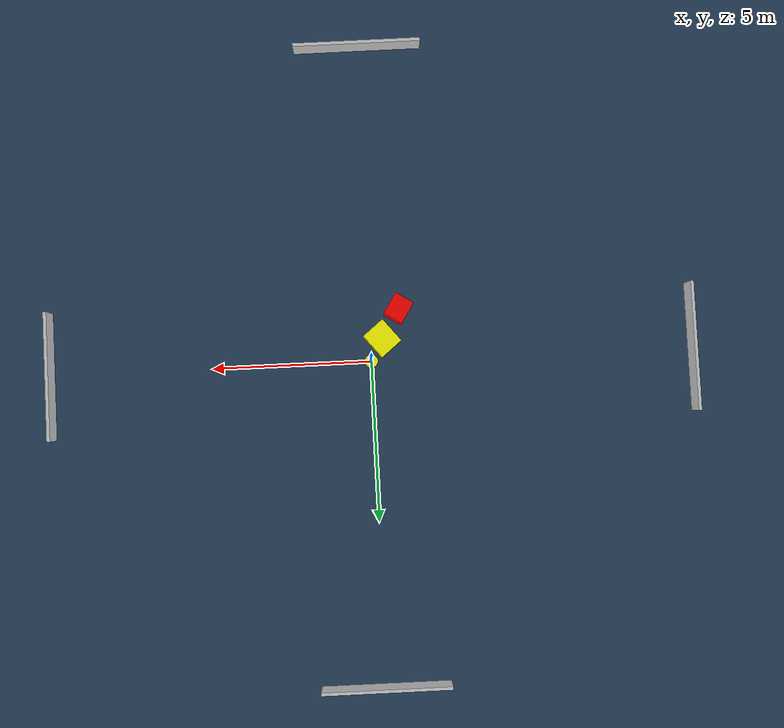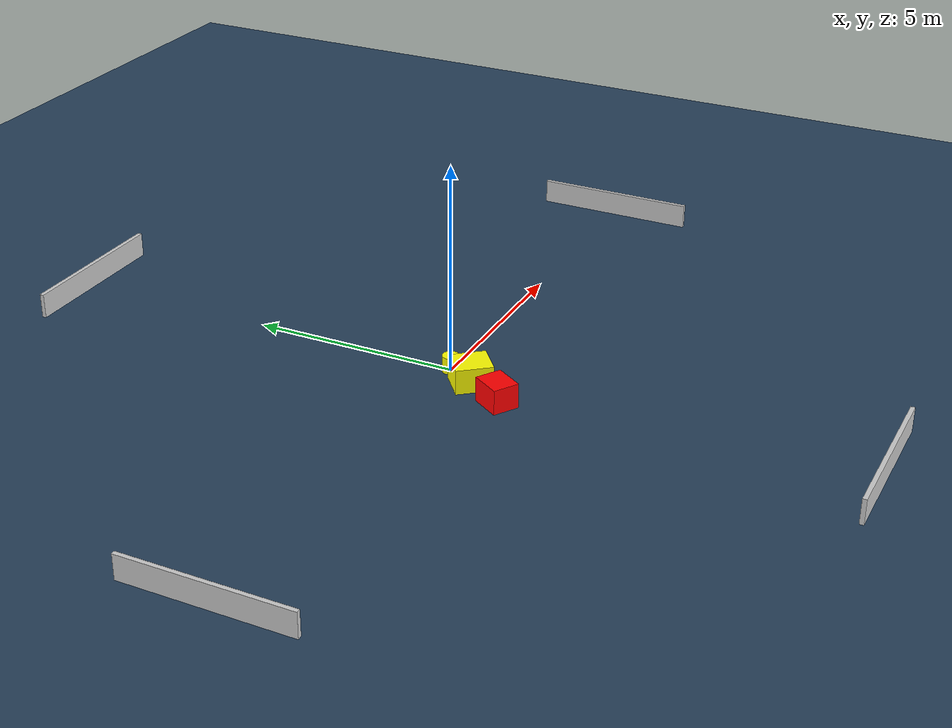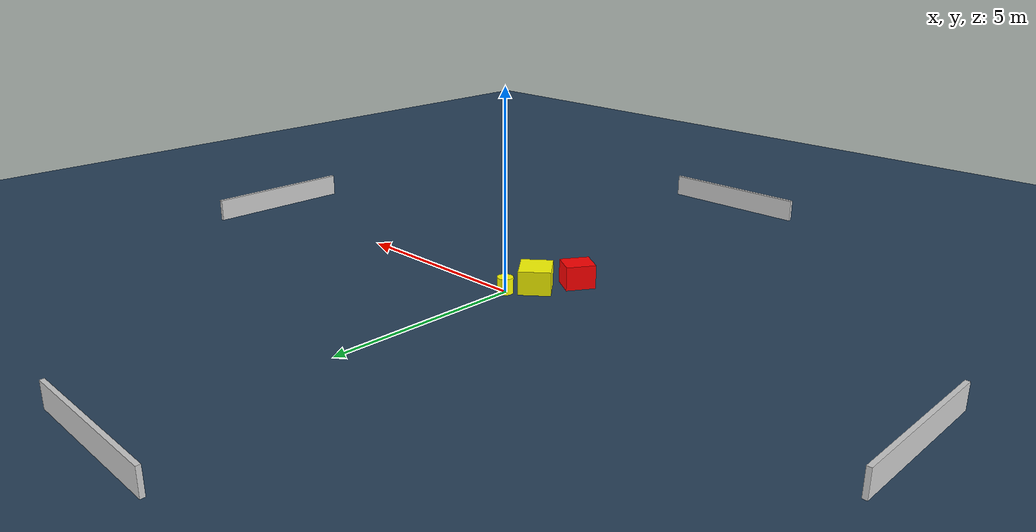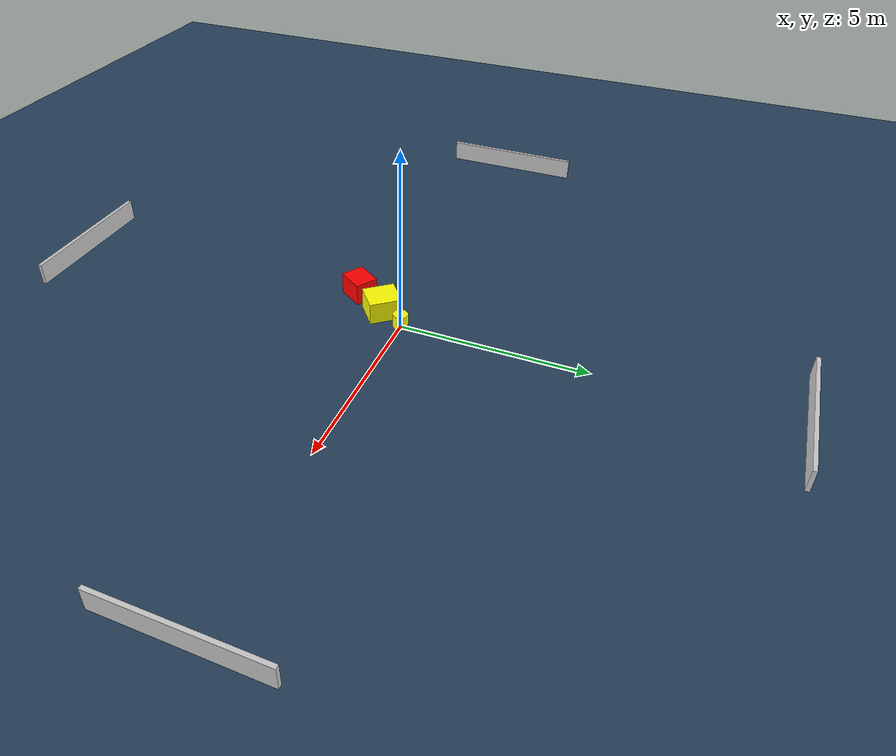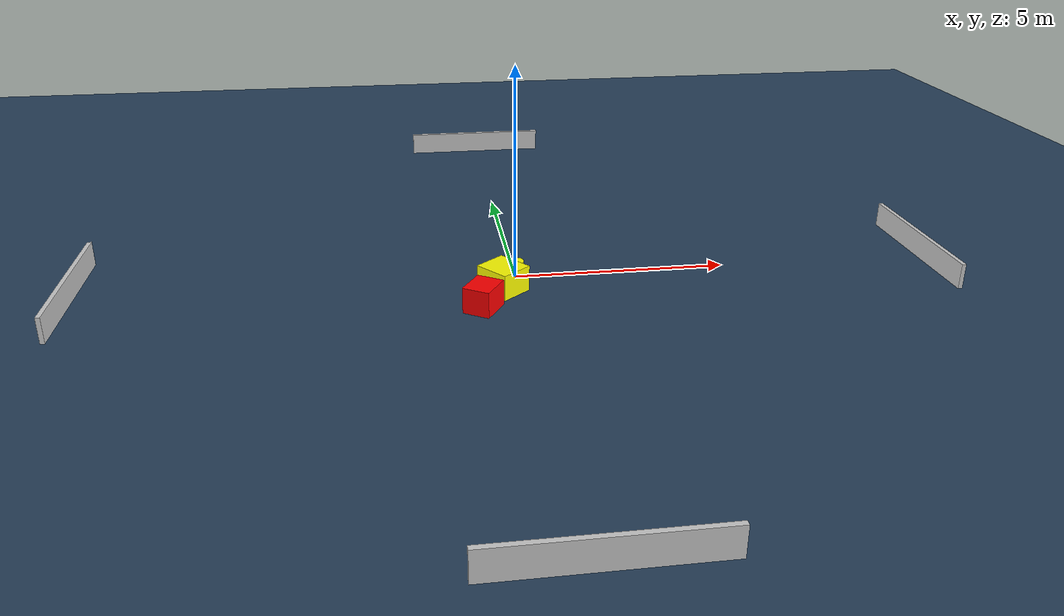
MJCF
<?xml version="1.0" ?>
<mujoco model="generated_environment">
  <option timestep="0.01" integrator="RK4" cone="elliptic"/>
  <default>
    <geom density="1"/>
  </default>
  <asset>
    <texture builtin="gradient" height="3072" name="skybox" rgb1="0.3 0.5 0.7" rgb2="0 0 0" type="skybox" width="512"/>
    <texture builtin="checker" height="300" name="groundplane" rgb1="0.2 0.3 0.4" rgb2="0.1 0.2 0.3" type="2d" width="300"/>
    <material name="groundplane" reflectance="0.2" texrepeat="5 5" texture="groundplane"/>
  </asset>
  <worldbody>
    <light dir="0 0 -1" directional="true" pos="0 0 1.5"/>
    <geom condim="3" friction="0.5 0.005 0.001" material="groundplane" name="floor" pos="0 0 0" size="0 0 0.05" type="plane"/>
    <body name="walls">
      <geom name="wall_1" condim="4" pos="-10.0 0.0 0.3" rgba="0.800000011920929 0.800000011920929 0.800000011920929 1.0" size="0.05 2.0 0.3" type="box"/>
      <geom name="wall_2" condim="4" pos="10.0 0.0 0.3" rgba="0.800000011920929 0.800000011920929 0.800000011920929 1.0" size="0.05 2.0 0.3" type="box"/>
      <geom name="wall_3" condim="4" pos="0.0 -10.0 0.3" rgba="0.800000011920929 0.800000011920929 0.800000011920929 1.0" size="2.0 0.05 0.3" type="box"/>
      <geom name="wall_4" condim="4" pos="0.0 10.0 0.3" rgba="0.800000011920929 0.800000011920929 0.800000011920929 1.0" size="2.0 0.05 0.3" type="box"/>
    </body>
    <body name="robot">
      <joint name="joint_x" type="slide" pos="0 0 0" axis="1 0 0"/>
      <joint name="joint_y" type="slide" pos="0 0 0" axis="0 1 0"/>
      <geom name="robot" type="cylinder" pos="0.0 0.0 0.2" size="0.2 0.2 0.0" mass="5.0" friction="1.0 0.005 0.0001" condim="4" rgba="1.0 1.0 0.0 1.0"/>
    </body>
    <body name="obstacle_1_movable">
      <geom name="obstacle_1_movable" condim="4" pos="-0.3674255912696677 -0.6831262011347515 0.3" euler="0 0 309.0953669545419" friction="0.0 0.005 0.001" rgba="1.0 1.0 0.0 1.0" size="0.43777213458678915 0.3981811287759147 0.3" type="box" mass="0.1"/>
      <joint type="free"/>
    </body>
    <body name="obstacle_2_static">
      <geom name="obstacle_2_static" condim="4" pos="-0.9171864633154672 -1.5917290144284797 0.3" euler="0 0 57.66427848981344" friction="0.0 0.005 0.001" rgba="1.0 0.0 0.0 1.0" size="0.37383088523561203 0.3183697069798352 0.3" type="box"/>
    </body>
  </worldbody>
  <actuator>
    <motor name="actuator_x" joint="joint_x" gear="1" ctrlrange="-1 1"/>
    <motor name="actuator_y" joint="joint_y" gear="1" ctrlrange="-1 1"/>
  </actuator>
</mujoco>
